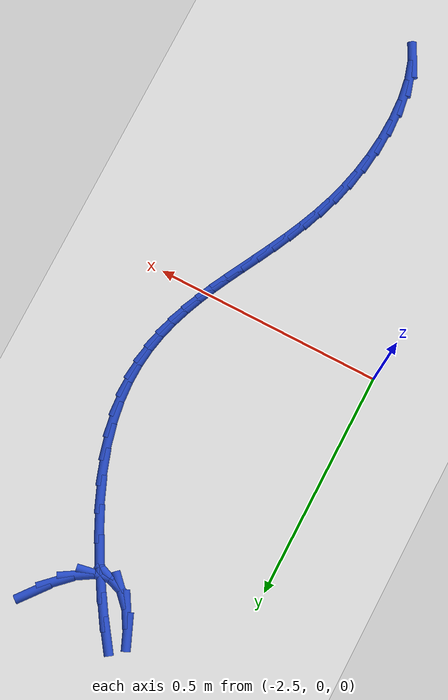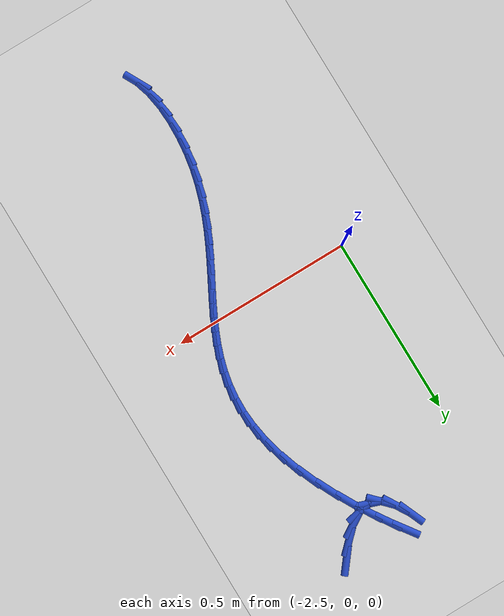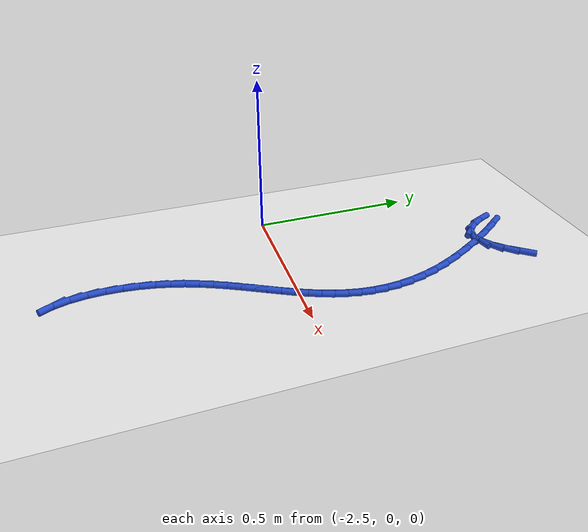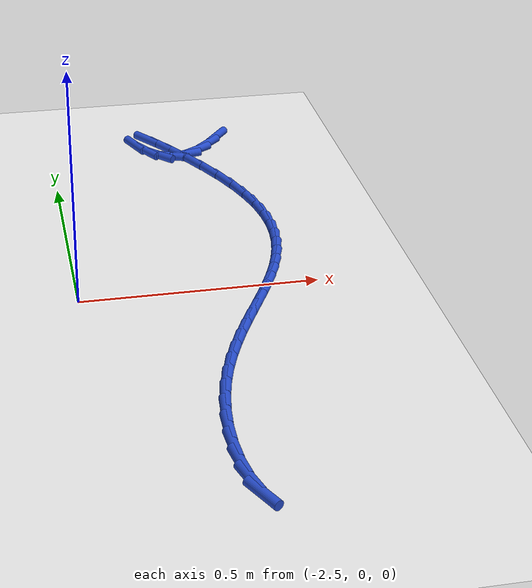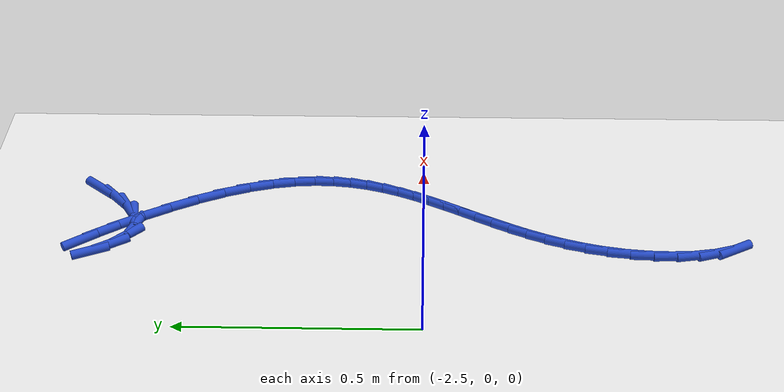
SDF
<sdf version="1.6">
 <world name="default">
  <model name="ground_plane">
   <static>1</static>
   <link name="link">
    <collision name="collision">
     <geometry><plane><normal>0 0 1</normal><size>100 100</size></plane></geometry>
     <surface><friction><ode><mu>100</mu><mu2>50</mu2></ode></friction></surface>
    </collision>
    <visual name="visual">
     <cast_shadows>0</cast_shadows>
     <geometry><plane><normal>0 0 1</normal><size>100 100</size></plane></geometry>
     <material>
      <script><uri>file://media/materials/scripts/gazebo.material</uri><name>Gazebo/WhiteGlow</name></script>
     </material>
    </visual>
   </link>
  </model>
  <model name="line">
   <link name="link_101">
    <pose>-2.0776049374529304 0.716578256831106 0.01 0 1.57 0.898692381756365</pose>
    <collision name="collision">
     <geometry><cylinder><radius>0.01</radius><length>0.08</length></cylinder></geometry>
    </collision>
    <visual name="visual">
     <material>
      <script><name>Gazebo/Blue</name><uri>file://media/materials/scripts/gazebo.material</uri></script>
     </material>
     <geometry><cylinder><radius>0.01</radius><length>0.08</length></cylinder></geometry>
    </visual>
   </link>
   <link name="link_102">
    <pose>-2.10891235502181 0.677231730958562 0.01 0 1.57 0.7645020240873911</pose>
    <collision name="collision">
     <geometry><cylinder><radius>0.01</radius><length>0.08</length></cylinder></geometry>
    </collision>
    <visual name="visual">
     <material>
      <script><name>Gazebo/Blue</name><uri>file://media/materials/scripts/gazebo.material</uri></script>
     </material>
     <geometry><cylinder><radius>0.01</radius><length>0.08</length></cylinder></geometry>
    </visual>
   </link>
   <link name="link_103">
    <pose>-2.1413174866127247 0.6461533527463581 0.01 0 1.57 0.5487394880539735</pose>
    <collision name="collision">
     <geometry><cylinder><radius>0.01</radius><length>0.08</length></cylinder></geometry>
    </collision>
    <visual name="visual">
     <material>
      <script><name>Gazebo/Blue</name><uri>file://media/materials/scripts/gazebo.material</uri></script>
     </material>
     <geometry><cylinder><radius>0.01</radius><length>0.08</length></cylinder></geometry>
    </visual>
   </link>
   <link name="link_104">
    <pose>-2.173955502096372 0.6261993769005505 0.01 0 1.57 0.18450815201012097</pose>
    <collision name="collision">
     <geometry><cylinder><radius>0.01</radius><length>0.08</length></cylinder></geometry>
    </collision>
    <visual name="visual">
     <material>
      <script><name>Gazebo/Blue</name><uri>file://media/materials/scripts/gazebo.material</uri></script>
     </material>
     <geometry><cylinder><radius>0.01</radius><length>0.08</length></cylinder></geometry>
    </visual>
   </link>
   <link name="link_105">
    <pose>-2.2059615713434475 0.6202260581271948 0.01 0 1.57 -0.34207646086847465</pose>
    <collision name="collision">
     <geometry><cylinder><radius>0.01</radius><length>0.08</length></cylinder></geometry>
    </collision>
    <visual name="visual">
     <material>
      <script><name>Gazebo/Blue</name><uri>file://media/materials/scripts/gazebo.material</uri></script>
     </material>
     <geometry><cylinder><radius>0.01</radius><length>0.08</length></cylinder></geometry>
    </visual>
   </link>
   <link name="link_106">
    <pose>-2.2364708642246502 0.6310896511323463 0.01 0 1.57 -0.8012182440237074</pose>
    <collision name="collision">
     <geometry><cylinder><radius>0.01</radius><length>0.08</length></cylinder></geometry>
    </collision>
    <visual name="visual">
     <material>
      <script><name>Gazebo/Blue</name><uri>file://media/materials/scripts/gazebo.material</uri></script>
     </material>
     <geometry><cylinder><radius>0.01</radius><length>0.08</length></cylinder></geometry>
    </visual>
   </link>
   <link name="link_107">
    <pose>-2.2644408208514664 0.659958883332437 0.01 0 1.57 -1.033540197316055</pose>
    <collision name="collision">
     <geometry><cylinder><radius>0.01</radius><length>0.08</length></cylinder></geometry>
    </collision>
    <visual name="visual">
     <material>
      <script><name>Gazebo/Blue</name><uri>file://media/materials/scripts/gazebo.material</uri></script>
     </material>
     <geometry><cylinder><radius>0.01</radius><length>0.08</length></cylinder></geometry>
    </visual>
   </link>
   <link name="link_108">
    <pose>-2.2879200237036095 0.6993729647077744 0.01 0 1.57 -1.1720237390423345</pose>
    <collision name="collision">
     <geometry><cylinder><radius>0.01</radius><length>0.08</length></cylinder></geometry>
    </collision>
    <visual name="visual">
     <material>
      <script><name>Gazebo/Blue</name><uri>file://media/materials/scripts/gazebo.material</uri></script>
     </material>
     <geometry><cylinder><radius>0.01</radius><length>0.08</length></cylinder></geometry>
    </visual>
   </link>
   <link name="link_114">
    <pose>-2.254036297213676 0.7272253715280426 0.01 0 1.57 -0.9538883172212502</pose>
    <collision name="collision">
     <geometry><cylinder><radius>0.01</radius><length>0.08</length></cylinder></geometry>
    </collision>
    <visual name="visual">
     <material>
      <script><name>Gazebo/Blue</name><uri>file://media/materials/scripts/gazebo.material</uri></script>
     </material>
     <geometry><cylinder><radius>0.01</radius><length>0.08</length></cylinder></geometry>
    </visual>
   </link>
   <link name="link_115">
    <pose>-2.2253455761703984 0.6867732539234555 0.01 0 1.57 -0.9971426123460815</pose>
    <collision name="collision">
     <geometry><cylinder><radius>0.01</radius><length>0.08</length></cylinder></geometry>
    </collision>
    <visual name="visual">
     <material>
      <script><name>Gazebo/Blue</name><uri>file://media/materials/scripts/gazebo.material</uri></script>
     </material>
     <geometry><cylinder><radius>0.01</radius><length>0.08</length></cylinder></geometry>
    </visual>
   </link>
   <link name="link_116">
    <pose>-2.1945473498623556 0.6391079777387219 0.01 0 1.57 -1.035266821582567</pose>
    <collision name="collision">
     <geometry><cylinder><radius>0.01</radius><length>0.08</length></cylinder></geometry>
    </collision>
    <visual name="visual">
     <material>
      <script><name>Gazebo/Blue</name><uri>file://media/materials/scripts/gazebo.material</uri></script>
     </material>
     <geometry><cylinder><radius>0.01</radius><length>0.08</length></cylinder></geometry>
    </visual>
   </link>
   <link name="link_117">
    <pose>-2.1634057438605785 0.5866252805970268 0.01 0 1.57 -1.0746413449559762</pose>
    <collision name="collision">
     <geometry><cylinder><radius>0.01</radius><length>0.08</length></cylinder></geometry>
    </collision>
    <visual name="visual">
     <material>
      <script><name>Gazebo/Blue</name><uri>file://media/materials/scripts/gazebo.material</uri></script>
     </material>
     <geometry><cylinder><radius>0.01</radius><length>0.08</length></cylinder></geometry>
    </visual>
   </link>
   <link name="link_118">
    <pose>-2.1336848837361053 0.531720900121556 0.01 0 1.57 -1.1207724686735614</pose>
    <collision name="collision">
     <geometry><cylinder><radius>0.01</radius><length>0.08</length></cylinder></geometry>
    </collision>
    <visual name="visual">
     <material>
      <script><name>Gazebo/Blue</name><uri>file://media/materials/scripts/gazebo.material</uri></script>
     </material>
     <geometry><cylinder><radius>0.01</radius><length>0.08</length></cylinder></geometry>
    </visual>
   </link>
   <link name="link_119">
    <pose>-2.1071488950599693 0.47679057393549434 0.01 0 1.57 -1.1802291990505867</pose>
    <collision name="collision">
     <geometry><cylinder><radius>0.01</radius><length>0.08</length></cylinder></geometry>
    </collision>
    <visual name="visual">
     <material>
      <script><name>Gazebo/Blue</name><uri>file://media/materials/scripts/gazebo.material</uri></script>
     </material>
     <geometry><cylinder><radius>0.01</radius><length>0.08</length></cylinder></geometry>
    </visual>
   </link>
   <link name="link_120">
    <pose>-2.0854535699417083 0.4240959530797717 0.01 0 1.57 -1.2516203243371904</pose>
    <collision name="collision">
     <geometry><cylinder><radius>0.01</radius><length>0.08</length></cylinder></geometry>
    </collision>
    <visual name="visual">
     <material>
      <script><name>Gazebo/Blue</name><uri>file://media/materials/scripts/gazebo.material</uri></script>
     </material>
     <geometry><cylinder><radius>0.01</radius><length>0.08</length></cylinder></geometry>
    </visual>
   </link>
   <link name="link_121">
    <pose>-2.069020903581175 0.3743715924559414 0.01 0 1.57 -1.3301377133951355</pose>
    <collision name="collision">
     <geometry><cylinder><radius>0.01</radius><length>0.08</length></cylinder></geometry>
    </collision>
    <visual name="visual">
     <material>
      <script><name>Gazebo/Blue</name><uri>file://media/materials/scripts/gazebo.material</uri></script>
     </material>
     <geometry><cylinder><radius>0.01</radius><length>0.08</length></cylinder></geometry>
    </visual>
   </link>
   <link name="link_122">
    <pose>-2.0574888733721433 0.3273816517931715 0.01 0 1.57 -1.4146646321545435</pose>
    <collision name="collision">
     <geometry><cylinder><radius>0.01</radius><length>0.08</length></cylinder></geometry>
    </collision>
    <visual name="visual">
     <material>
      <script><name>Gazebo/Blue</name><uri>file://media/materials/scripts/gazebo.material</uri></script>
     </material>
     <geometry><cylinder><radius>0.01</radius><length>0.08</length></cylinder></geometry>
    </visual>
   </link>
   <link name="link_123">
    <pose>-2.050482917593868 0.2828747708973552 0.01 0 1.57 -1.5033781163425735</pose>
    <collision name="collision">
     <geometry><cylinder><radius>0.01</radius><length>0.08</length></cylinder></geometry>
    </collision>
    <visual name="visual">
     <material>
      <script><name>Gazebo/Blue</name><uri>file://media/materials/scripts/gazebo.material</uri></script>
     </material>
     <geometry><cylinder><radius>0.01</radius><length>0.08</length></cylinder></geometry>
    </visual>
   </link>
   <link name="link_124">
    <pose>-2.047628474525604 0.24059958957438585 0.01 0 1.57 1.5479063797207688</pose>
    <collision name="collision">
     <geometry><cylinder><radius>0.01</radius><length>0.08</length></cylinder></geometry>
    </collision>
    <visual name="visual">
     <material>
      <script><name>Gazebo/Blue</name><uri>file://media/materials/scripts/gazebo.material</uri></script>
     </material>
     <geometry><cylinder><radius>0.01</radius><length>0.08</length></cylinder></geometry>
    </visual>
   </link>
   <link name="link_125">
    <pose>-2.048550982446605 0.2003047476301567 0.01 0 1.57 1.4591197720452276</pose>
    <collision name="collision">
     <geometry><cylinder><radius>0.01</radius><length>0.08</length></cylinder></geometry>
    </collision>
    <visual name="visual">
     <material>
      <script><name>Gazebo/Blue</name><uri>file://media/materials/scripts/gazebo.material</uri></script>
     </material>
     <geometry><cylinder><radius>0.01</radius><length>0.08</length></cylinder></geometry>
    </visual>
   </link>
   <link name="link_126">
    <pose>-2.0528758796361255 0.1617388848705611 0.01 0 1.57 1.3750845323672591</pose>
    <collision name="collision">
     <geometry><cylinder><radius>0.01</radius><length>0.08</length></cylinder></geometry>
    </collision>
    <visual name="visual">
     <material>
      <script><name>Gazebo/Blue</name><uri>file://media/materials/scripts/gazebo.material</uri></script>
     </material>
     <geometry><cylinder><radius>0.01</radius><length>0.08</length></cylinder></geometry>
    </visual>
   </link>
   <link name="link_127">
    <pose>-2.06022860437342 0.12465064110149231 0.01 0 1.57 1.2987023124889259</pose>
    <collision name="collision">
     <geometry><cylinder><radius>0.01</radius><length>0.08</length></cylinder></geometry>
    </collision>
    <visual name="visual">
     <material>
      <script><name>Gazebo/Blue</name><uri>file://media/materials/scripts/gazebo.material</uri></script>
     </material>
     <geometry><cylinder><radius>0.01</radius><length>0.08</length></cylinder></geometry>
    </visual>
   </link>
   <link name="link_128">
    <pose>-2.0702345949377428 0.08878865612884368 0.01 0 1.57 1.2322276430005794</pose>
    <collision name="collision">
     <geometry><cylinder><radius>0.01</radius><length>0.08</length></cylinder></geometry>
    </collision>
    <visual name="visual">
     <material>
      <script><name>Gazebo/Blue</name><uri>file://media/materials/scripts/gazebo.material</uri></script>
     </material>
     <geometry><cylinder><radius>0.01</radius><length>0.08</length></cylinder></geometry>
    </visual>
   </link>
   <link name="link_129">
    <pose>-2.0825192896083484 0.053901569758508495 0.01 0 1.57 1.1771524043063917</pose>
    <collision name="collision">
     <geometry><cylinder><radius>0.01</radius><length>0.08</length></cylinder></geometry>
    </collision>
    <visual name="visual">
     <material>
      <script><name>Gazebo/Blue</name><uri>file://media/materials/scripts/gazebo.material</uri></script>
     </material>
     <geometry><cylinder><radius>0.01</radius><length>0.08</length></cylinder></geometry>
    </visual>
   </link>
   <link name="link_130">
    <pose>-2.0967081266644922 0.019738021796380144 0.01 0 1.57 1.1342720634331802</pose>
    <collision name="collision">
     <geometry><cylinder><radius>0.01</radius><length>0.08</length></cylinder></geometry>
    </collision>
    <visual name="visual">
     <material>
      <script><name>Gazebo/Blue</name><uri>file://media/materials/scripts/gazebo.material</uri></script>
     </material>
     <geometry><cylinder><radius>0.01</radius><length>0.08</length></cylinder></geometry>
    </visual>
   </link>
   <link name="link_131">
    <pose>-2.1124265443854275 -0.013953347951648196 0.01 0 1.57 1.1038519079515718</pose>
    <collision name="collision">
     <geometry><cylinder><radius>0.01</radius><length>0.08</length></cylinder></geometry>
    </collision>
    <visual name="visual">
     <material>
      <script><name>Gazebo/Blue</name><uri>file://media/materials/scripts/gazebo.material</uri></script>
     </material>
     <geometry><cylinder><radius>0.01</radius><length>0.08</length></cylinder></geometry>
    </visual>
   </link>
   <link name="link_132">
    <pose>-2.1292999810504085 -0.047423899679683135 0.01 0 1.57 1.085810384866999</pose>
    <collision name="collision">
     <geometry><cylinder><radius>0.01</radius><length>0.08</length></cylinder></geometry>
    </collision>
    <visual name="visual">
     <material>
      <script><name>Gazebo/Blue</name><uri>file://media/materials/scripts/gazebo.material</uri></script>
     </material>
     <geometry><cylinder><radius>0.01</radius><length>0.08</length></cylinder></geometry>
    </visual>
   </link>
   <link name="link_133">
    <pose>-2.1469538749386907 -0.0809249935818314 0.01 0 1.57 1.0798671825180026</pose>
    <collision name="collision">
     <geometry><cylinder><radius>0.01</radius><length>0.08</length></cylinder></geometry>
    </collision>
    <visual name="visual">
     <material>
      <script><name>Gazebo/Blue</name><uri>file://media/materials/scripts/gazebo.material</uri></script>
     </material>
     <geometry><cylinder><radius>0.01</radius><length>0.08</length></cylinder></geometry>
    </visual>
   </link>
   <link name="link_134">
    <pose>-2.165013664329528 -0.11470798985219963 0.01 0 1.57 1.0856355569534442</pose>
    <collision name="collision">
     <geometry><cylinder><radius>0.01</radius><length>0.08</length></cylinder></geometry>
    </collision>
    <visual name="visual">
     <material>
      <script><name>Gazebo/Blue</name><uri>file://media/materials/scripts/gazebo.material</uri></script>
     </material>
     <geometry><cylinder><radius>0.01</radius><length>0.08</length></cylinder></geometry>
    </visual>
   </link>
   <link name="link_135">
    <pose>-2.1831047875021747 -0.14902424868489458 0.01 0 1.57 1.1026585784182885</pose>
    <collision name="collision">
     <geometry><cylinder><radius>0.01</radius><length>0.08</length></cylinder></geometry>
    </collision>
    <visual name="visual">
     <material>
      <script><name>Gazebo/Blue</name><uri>file://media/materials/scripts/gazebo.material</uri></script>
     </material>
     <geometry><cylinder><radius>0.01</radius><length>0.08</length></cylinder></geometry>
    </visual>
   </link>
   <link name="link_136">
    <pose>-2.2008526827358854 -0.18412513027402289 0.01 0 1.57 1.1303983264116755</pose>
    <collision name="collision">
     <geometry><cylinder><radius>0.01</radius><length>0.08</length></cylinder></geometry>
    </collision>
    <visual name="visual">
     <material>
      <script><name>Gazebo/Blue</name><uri>file://media/materials/scripts/gazebo.material</uri></script>
     </material>
     <geometry><cylinder><radius>0.01</radius><length>0.08</length></cylinder></geometry>
    </visual>
   </link>
   <link name="link_137">
    <pose>-2.2178827883099146 -0.2202619948136913 0.01 0 1.57 1.1681911188945557</pose>
    <collision name="collision">
     <geometry><cylinder><radius>0.01</radius><length>0.08</length></cylinder></geometry>
    </collision>
    <visual name="visual">
     <material>
      <script><name>Gazebo/Blue</name><uri>file://media/materials/scripts/gazebo.material</uri></script>
     </material>
     <geometry><cylinder><radius>0.01</radius><length>0.08</length></cylinder></geometry>
    </visual>
   </link>
   <link name="link_138">
    <pose>-2.2338205425035165 -0.25768620249800644 0.01 0 1.57 1.2151851908509403</pose>
    <collision name="collision">
     <geometry><cylinder><radius>0.01</radius><length>0.08</length></cylinder></geometry>
    </collision>
    <visual name="visual">
     <material>
      <script><name>Gazebo/Blue</name><uri>file://media/materials/scripts/gazebo.material</uri></script>
     </material>
     <geometry><cylinder><radius>0.01</radius><length>0.08</length></cylinder></geometry>
    </visual>
   </link>
   <link name="link_139">
    <pose>-2.248291383595946 -0.2966491135210751 0.01 0 1.57 1.2702814563120286</pose>
    <collision name="collision">
     <geometry><cylinder><radius>0.01</radius><length>0.08</length></cylinder></geometry>
    </collision>
    <visual name="visual">
     <material>
      <script><name>Gazebo/Blue</name><uri>file://media/materials/scripts/gazebo.material</uri></script>
     </material>
     <geometry><cylinder><radius>0.01</radius><length>0.08</length></cylinder></geometry>
    </visual>
   </link>
   <link name="link_140">
    <pose>-2.2609207498664565 -0.33740208807700384 0.01 0 1.57 1.3321013717686376</pose>
    <collision name="collision">
     <geometry><cylinder><radius>0.01</radius><length>0.08</length></cylinder></geometry>
    </collision>
    <visual name="visual">
     <material>
      <script><name>Gazebo/Blue</name><uri>file://media/materials/scripts/gazebo.material</uri></script>
     </material>
     <geometry><cylinder><radius>0.01</radius><length>0.08</length></cylinder></geometry>
    </visual>
   </link>
   <link name="link_141">
    <pose>-2.271334079594303 -0.38019648635989944 0.01 0 1.57 1.399004189291037</pose>
    <collision name="collision">
     <geometry><cylinder><radius>0.01</radius><length>0.08</length></cylinder></geometry>
    </collision>
    <visual name="visual">
     <material>
      <script><name>Gazebo/Blue</name><uri>file://media/materials/scripts/gazebo.material</uri></script>
     </material>
     <geometry><cylinder><radius>0.01</radius><length>0.08</length></cylinder></geometry>
    </visual>
   </link>
   <link name="link_142">
    <pose>-2.279156811058741 -0.42528366856386857 0.01 0 1.57 1.4690730728447052</pose>
    <collision name="collision">
     <geometry><cylinder><radius>0.01</radius><length>0.08</length></cylinder></geometry>
    </collision>
    <visual name="visual">
     <material>
      <script><name>Gazebo/Blue</name><uri>file://media/materials/scripts/gazebo.material</uri></script>
     </material>
     <geometry><cylinder><radius>0.01</radius><length>0.08</length></cylinder></geometry>
    </visual>
   </link>
   <link name="link_143">
    <pose>-2.2839953713727486 -0.4726854120923047 0.01 0 1.57 1.5429162462174255</pose>
    <collision name="collision">
     <geometry><cylinder><radius>0.01</radius><length>0.08</length></cylinder></geometry>
    </collision>
    <visual name="visual">
     <material>
      <script><name>Gazebo/Blue</name><uri>file://media/materials/scripts/gazebo.material</uri></script>
     </material>
     <geometry><cylinder><radius>0.01</radius><length>0.08</length></cylinder></geometry>
    </visual>
   </link>
   <link name="link_144">
    <pose>-2.2853449812010305 -0.5210805421925309 0.01 0 1.57 -1.5144372218943387</pose>
    <collision name="collision">
     <geometry><cylinder><radius>0.01</radius><length>0.08</length></cylinder></geometry>
    </collision>
    <visual name="visual">
     <material>
      <script><name>Gazebo/Blue</name><uri>file://media/materials/scripts/gazebo.material</uri></script>
     </material>
     <geometry><cylinder><radius>0.01</radius><length>0.08</length></cylinder></geometry>
    </visual>
   </link>
   <link name="link_145">
    <pose>-2.282660545226886 -0.5686610199506761 0.01 0 1.57 -1.4106125029002232</pose>
    <collision name="collision">
     <geometry><cylinder><radius>0.01</radius><length>0.08</length></cylinder></geometry>
    </collision>
    <visual name="visual">
     <material>
      <script><name>Gazebo/Blue</name><uri>file://media/materials/scripts/gazebo.material</uri></script>
     </material>
     <geometry><cylinder><radius>0.01</radius><length>0.08</length></cylinder></geometry>
    </visual>
   </link>
   <link name="link_146">
    <pose>-2.2753969118684947 -0.6136181269836205 0.01 0 1.57 -1.2741300498782129</pose>
    <collision name="collision">
     <geometry><cylinder><radius>0.01</radius><length>0.08</length></cylinder></geometry>
    </collision>
    <visual name="visual">
     <material>
      <script><name>Gazebo/Blue</name><uri>file://media/materials/scripts/gazebo.material</uri></script>
     </material>
     <geometry><cylinder><radius>0.01</radius><length>0.08</length></cylinder></geometry>
    </visual>
   </link>
   <link name="link_147">
    <pose>-2.263008929544034 -0.6541431449082395 0.01 0 1.57 -1.0860178234768965</pose>
    <collision name="collision">
     <geometry><cylinder><radius>0.01</radius><length>0.08</length></cylinder></geometry>
    </collision>
    <visual name="visual">
     <material>
      <script><name>Gazebo/Blue</name><uri>file://media/materials/scripts/gazebo.material</uri></script>
     </material>
     <geometry><cylinder><radius>0.01</radius><length>0.08</length></cylinder></geometry>
    </visual>
   </link>
  </model>
 </world>
</sdf>
